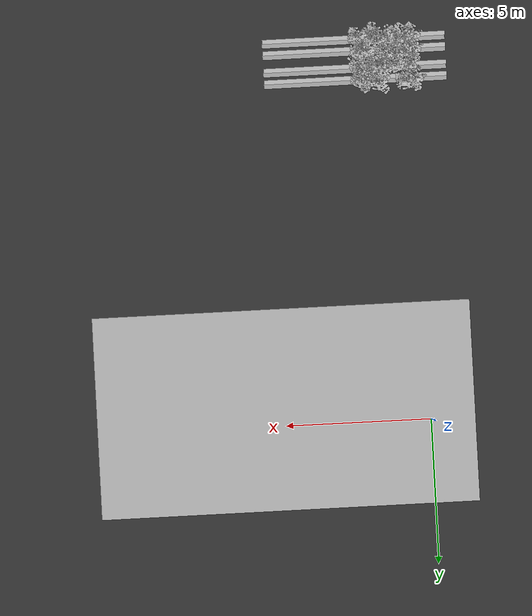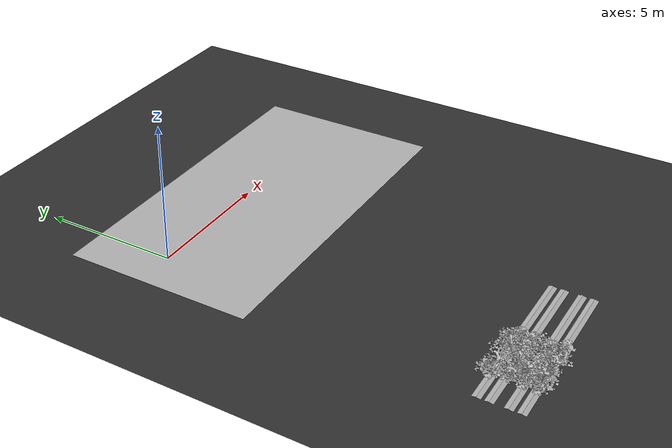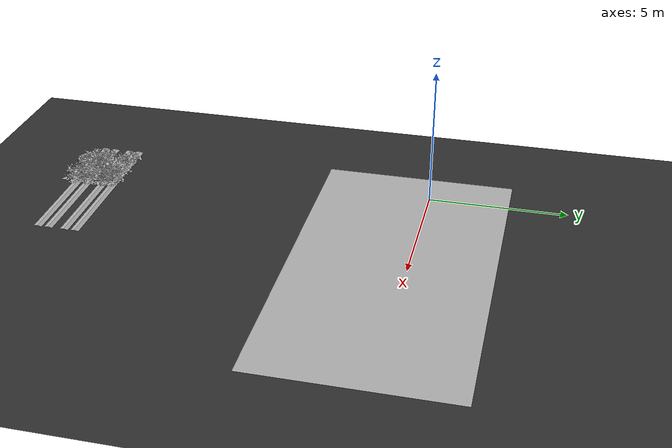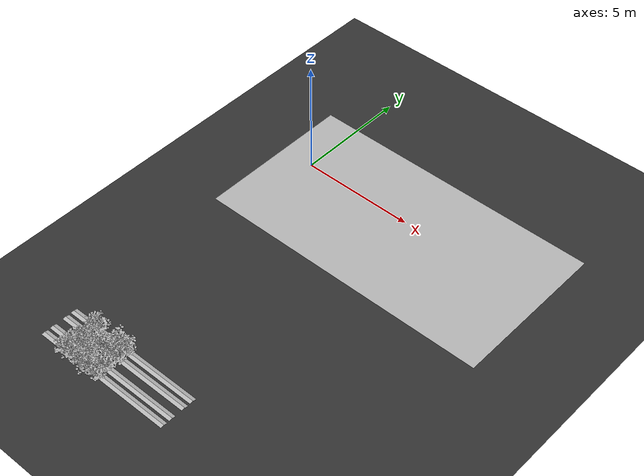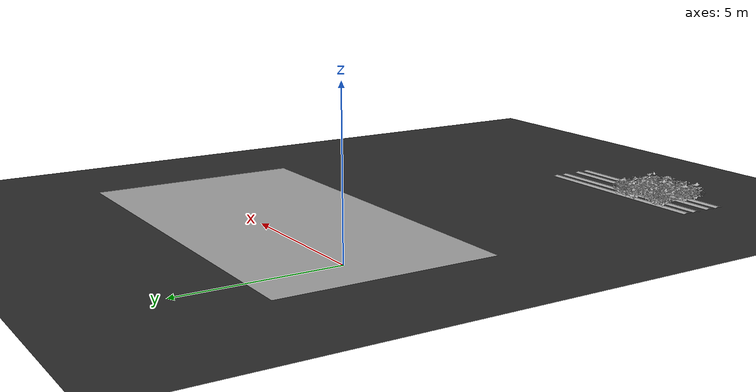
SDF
<sdf version="1.7">
 <world name="default">
  <model name="ground_plane">
   <static>1</static>
   <link name="link">
    <collision name="collision">
     <geometry><plane><normal>0 0 1</normal><size>100 100</size></plane></geometry>
     <surface>
      <contact><collide_bitmask>65535</collide_bitmask></contact>
      <friction><ode><mu>100</mu><mu2>50</mu2></ode></friction>
     </surface>
    </collision>
    <visual name="visual">
     <cast_shadows>0</cast_shadows>
     <geometry><plane><normal>0 0 1</normal><size>100 100</size></plane></geometry>
     <material>
      <ambient>0.2 0.2 0.2 1.0</ambient>
      <diffuse>0.2 0.2 0.2 1.0</diffuse>
      <specular>0.2 0.2 0.2 1.0</specular>
      <emissive>0.2 0.2 0.2 1.0</emissive>
     </material>
    </visual>
   </link>
  </model>
  <model name="ground">
   <pose>5 -0.5 0.01  3.141592654 0 0</pose>
   <static>true</static>
   <link name="body">
    <visual name="visual">
     <cast_shadows>0</cast_shadows>
     <geometry>
      <mesh><uri>file:///home/ifcosta/final_ws/src/cnn_line/worlds/models/ground.obj</uri></mesh>
     </geometry>
    </visual>
   </link>
  </model>
  <model name="plt_40000">
   <pose>-0.0155 -13.3 0.0139 0.0 0.0 -0.48719</pose>
   <static>true</static>
   <link name="body">
    <visual name="visual">
     <geometry>
      <mesh><uri>file:///home/ifcosta/final_ws/src/cnn_line/worlds/models/plant37.obj</uri></mesh>
     </geometry>
    </visual>
   </link>
  </model>
  <model name="plt_40001">
   <pose>0.29 -13.2 0.0123 0.0 0.0 0.6554</pose>
   <static>true</static>
   <link name="body">
    <visual name="visual">
     <geometry>
      <mesh><uri>file:///home/ifcosta/final_ws/src/cnn_line/worlds/models/plant37.obj</uri></mesh>
     </geometry>
    </visual>
   </link>
  </model>
  <model name="plt_40002">
   <pose>0.662 -13.3 0.0135 0.0 0.0 1.5998</pose>
   <static>true</static>
   <link name="body">
    <visual name="visual">
     <geometry>
      <mesh><uri>file:///home/ifcosta/final_ws/src/cnn_line/worlds/models/plant37.obj</uri></mesh>
     </geometry>
    </visual>
   </link>
  </model>
  <model name="plt_40003">
   <pose>0.961 -13.3 0.0196 0.0 0.0 0.44064</pose>
   <static>true</static>
   <link name="body">
    <visual name="visual">
     <geometry>
      <mesh><uri>file:///home/ifcosta/final_ws/src/cnn_line/worlds/models/plant37.obj</uri></mesh>
     </geometry>
    </visual>
   </link>
  </model>
  <model name="plt_40004">
   <pose>1.19 -13.2 0.012 0.0 0.0 -0.44722</pose>
   <static>true</static>
   <link name="body">
    <visual name="visual">
     <geometry>
      <mesh><uri>file:///home/ifcosta/final_ws/src/cnn_line/worlds/models/plant37.obj</uri></mesh>
     </geometry>
    </visual>
   </link>
  </model>
  <model name="plt_40005">
   <pose>1.48 -13.3 0.0138 0.0 0.0 2.0321</pose>
   <static>true</static>
   <link name="body">
    <visual name="visual">
     <geometry>
      <mesh><uri>file:///home/ifcosta/final_ws/src/cnn_line/worlds/models/plant37.obj</uri></mesh>
     </geometry>
    </visual>
   </link>
  </model>
  <model name="plt_40006">
   <pose>1.84 -13.3 0.0161 0.0 0.0 0.042525</pose>
   <static>true</static>
   <link name="body">
    <visual name="visual">
     <geometry>
      <mesh><uri>file:///home/ifcosta/final_ws/src/cnn_line/worlds/models/plant37.obj</uri></mesh>
     </geometry>
    </visual>
   </link>
  </model>
  <model name="slope_1834">
   <pose>2.0 -13.2 -0.005 0.0 0.0 0.0</pose>
   <static>true</static>
   <link name="body">
    <visual name="visual">
     <geometry>
      <mesh><uri>file:///home/ifcosta/final_ws/src/cnn_line/worlds/models/slope.obj</uri></mesh>
     </geometry>
    </visual>
   </link>
  </model>
  <model name="slope_1934">
   <pose>2.0 -13.2 -0.005 0.0 0.0 3.1416</pose>
   <static>true</static>
   <link name="body">
    <visual name="visual">
     <geometry>
      <mesh><uri>file:///home/ifcosta/final_ws/src/cnn_line/worlds/models/slope.obj</uri></mesh>
     </geometry>
    </visual>
   </link>
  </model>
  <model name="plt_40034">
   <pose>-0.0142 -12.8 0.0136 0.0 0.0 -0.39804</pose>
   <static>true</static>
   <link name="body">
    <visual name="visual">
     <geometry>
      <mesh><uri>file:///home/ifcosta/final_ws/src/cnn_line/worlds/models/plant37.obj</uri></mesh>
     </geometry>
    </visual>
   </link>
  </model>
  <model name="plt_40035">
   <pose>0.339 -12.7 0.0136 0.0 0.0 0.76334</pose>
   <static>true</static>
   <link name="body">
    <visual name="visual">
     <geometry>
      <mesh><uri>file:///home/ifcosta/final_ws/src/cnn_line/worlds/models/plant37.obj</uri></mesh>
     </geometry>
    </visual>
   </link>
  </model>
  <model name="plt_40036">
   <pose>0.577 -12.7 0.0141 0.0 0.0 -0.52935</pose>
   <static>true</static>
   <link name="body">
    <visual name="visual">
     <geometry>
      <mesh><uri>file:///home/ifcosta/final_ws/src/cnn_line/worlds/models/plant37.obj</uri></mesh>
     </geometry>
    </visual>
   </link>
  </model>
  <model name="plt_40037">
   <pose>0.902 -12.7 0.0154 0.0 0.0 -0.58513</pose>
   <static>true</static>
   <link name="body">
    <visual name="visual">
     <geometry>
      <mesh><uri>file:///home/ifcosta/final_ws/src/cnn_line/worlds/models/plant37.obj</uri></mesh>
     </geometry>
    </visual>
   </link>
  </model>
  <model name="plt_40039">
   <pose>1.59 -12.8 0.0153 0.0 0.0 -0.074835</pose>
   <static>true</static>
   <link name="body">
    <visual name="visual">
     <geometry>
      <mesh><uri>file:///home/ifcosta/final_ws/src/cnn_line/worlds/models/plant37.obj</uri></mesh>
     </geometry>
    </visual>
   </link>
  </model>
  <model name="plt_40040">
   <pose>1.82 -12.8 0.0142 0.0 0.0 -1.5101</pose>
   <static>true</static>
   <link name="body">
    <visual name="visual">
     <geometry>
      <mesh><uri>file:///home/ifcosta/final_ws/src/cnn_line/worlds/models/plant37.obj</uri></mesh>
     </geometry>
    </visual>
   </link>
  </model>
  <model name="slope_1868">
   <pose>2.0 -12.8 -0.005 0.0 0.0 0.0</pose>
   <static>true</static>
   <link name="body">
    <visual name="visual">
     <geometry>
      <mesh><uri>file:///home/ifcosta/final_ws/src/cnn_line/worlds/models/slope.obj</uri></mesh>
     </geometry>
    </visual>
   </link>
  </model>
  <model name="slope_1968">
   <pose>2.0 -12.8 -0.005 0.0 0.0 3.1416</pose>
   <static>true</static>
   <link name="body">
    <visual name="visual">
     <geometry>
      <mesh><uri>file:///home/ifcosta/final_ws/src/cnn_line/worlds/models/slope.obj</uri></mesh>
     </geometry>
    </visual>
   </link>
  </model>
  <model name="plt_40068">
   <pose>0.0498 -12.3 0.0142 0.0 0.0 -1.3245</pose>
   <static>true</static>
   <link name="body">
    <visual name="visual">
     <geometry>
      <mesh><uri>file:///home/ifcosta/final_ws/src/cnn_line/worlds/models/plant37.obj</uri></mesh>
     </geometry>
    </visual>
   </link>
  </model>
  <model name="plt_40070">
   <pose>0.612 -12.3 0.0137 0.0 0.0 0.46737</pose>
   <static>true</static>
   <link name="body">
    <visual name="visual">
     <geometry>
      <mesh><uri>file:///home/ifcosta/final_ws/src/cnn_line/worlds/models/plant37.obj</uri></mesh>
     </geometry>
    </visual>
   </link>
  </model>
  <model name="plt_40071">
   <pose>0.981 -12.2 0.0156 0.0 0.0 -0.64731</pose>
   <static>true</static>
   <link name="body">
    <visual name="visual">
     <geometry>
      <mesh><uri>file:///home/ifcosta/final_ws/src/cnn_line/worlds/models/plant37.obj</uri></mesh>
     </geometry>
    </visual>
   </link>
  </model>
  <model name="plt_40072">
   <pose>1.13 -12.3 0.0126 0.0 0.0 -2.7398</pose>
   <static>true</static>
   <link name="body">
    <visual name="visual">
     <geometry>
      <mesh><uri>file:///home/ifcosta/final_ws/src/cnn_line/worlds/models/plant37.obj</uri></mesh>
     </geometry>
    </visual>
   </link>
  </model>
  <model name="plt_40073">
   <pose>1.48 -12.2 0.0167 0.0 0.0 -1.1513</pose>
   <static>true</static>
   <link name="body">
    <visual name="visual">
     <geometry>
      <mesh><uri>file:///home/ifcosta/final_ws/src/cnn_line/worlds/models/plant37.obj</uri></mesh>
     </geometry>
    </visual>
   </link>
  </model>
  <model name="plt_40074">
   <pose>1.84 -12.2 0.0138 0.0 0.0 -1.0559</pose>
   <static>true</static>
   <link name="body">
    <visual name="visual">
     <geometry>
      <mesh><uri>file:///home/ifcosta/final_ws/src/cnn_line/worlds/models/plant37.obj</uri></mesh>
     </geometry>
    </visual>
   </link>
  </model>
  <model name="slope_1902">
   <pose>2.0 -12.2 -0.005 0.0 0.0 0.0</pose>
   <static>true</static>
   <link name="body">
    <visual name="visual">
     <geometry>
      <mesh><uri>file:///home/ifcosta/final_ws/src/cnn_line/worlds/models/slope.obj</uri></mesh>
     </geometry>
    </visual>
   </link>
  </model>
  <model name="slope_2002">
   <pose>2.0 -12.2 -0.005 0.0 0.0 3.1416</pose>
   <static>true</static>
   <link name="body">
    <visual name="visual">
     <geometry>
      <mesh><uri>file:///home/ifcosta/final_ws/src/cnn_line/worlds/models/slope.obj</uri></mesh>
     </geometry>
    </visual>
   </link>
  </model>
  <model name="plt_40102">
   <pose>-0.0664 -11.8 0.0167 0.0 0.0 -0.58304</pose>
   <static>true</static>
   <link name="body">
    <visual name="visual">
     <geometry>
      <mesh><uri>file:///home/ifcosta/final_ws/src/cnn_line/worlds/models/plant37.obj</uri></mesh>
     </geometry>
    </visual>
   </link>
  </model>
  <model name="plt_40103">
   <pose>0.262 -11.7 0.0141 0.0 0.0 0.30449</pose>
   <static>true</static>
   <link name="body">
    <visual name="visual">
     <geometry>
      <mesh><uri>file:///home/ifcosta/final_ws/src/cnn_line/worlds/models/plant37.obj</uri></mesh>
     </geometry>
    </visual>
   </link>
  </model>
  <model name="plt_40106">
   <pose>1.2 -11.7 0.0172 0.0 0.0 -0.080812</pose>
   <static>true</static>
   <link name="body">
    <visual name="visual">
     <geometry>
      <mesh><uri>file:///home/ifcosta/final_ws/src/cnn_line/worlds/models/plant37.obj</uri></mesh>
     </geometry>
    </visual>
   </link>
  </model>
  <model name="plt_40107">
   <pose>1.52 -11.8 0.0153 0.0 0.0 -1.2019</pose>
   <static>true</static>
   <link name="body">
    <visual name="visual">
     <geometry>
      <mesh><uri>file:///home/ifcosta/final_ws/src/cnn_line/worlds/models/plant37.obj</uri></mesh>
     </geometry>
    </visual>
   </link>
  </model>
  <model name="plt_40108">
   <pose>1.79 -11.8 0.0176 0.0 0.0 -0.34699</pose>
   <static>true</static>
   <link name="body">
    <visual name="visual">
     <geometry>
      <mesh><uri>file:///home/ifcosta/final_ws/src/cnn_line/worlds/models/plant37.obj</uri></mesh>
     </geometry>
    </visual>
   </link>
  </model>
  <model name="slope_1936">
   <pose>2.0 -11.8 -0.005 0.0 0.0 0.0</pose>
   <static>true</static>
   <link name="body">
    <visual name="visual">
     <geometry>
      <mesh><uri>file:///home/ifcosta/final_ws/src/cnn_line/worlds/models/slope.obj</uri></mesh>
     </geometry>
    </visual>
   </link>
  </model>
  <model name="slope_2036">
   <pose>2.0 -11.8 -0.005 0.0 0.0 3.1416</pose>
   <static>true</static>
   <link name="body">
    <visual name="visual">
     <geometry>
      <mesh><uri>file:///home/ifcosta/final_ws/src/cnn_line/worlds/models/slope.obj</uri></mesh>
     </geometry>
    </visual>
   </link>
  </model>
 </world>
</sdf>
